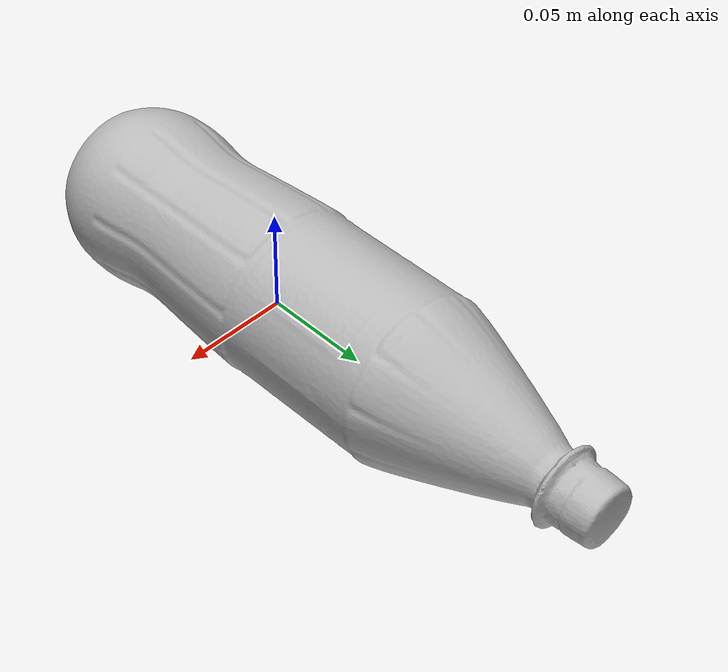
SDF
<?xml version='1.0'?>
<sdf version="1.4">
  <model name="CokePlasticLarge">
    <static>false</static>
    <link name="link">
      <inertial>
        <pose>-0.00314920988236481 0.011856275411037936 0.007875166721003392 1.5606779434718654 0.23532143997916574 3.1392752121110687</pose>
        <mass>0.1242627082214215</mass>
        <inertia>
          <ixx>0.0007163058634797565</ixx>
          <ixy>2.5128887917730382e-20</ixy>
          <ixz>-1.2755904065864066e-20</ixz>
          <iyy>0.0007161846187254631</iyy>
          <iyz>6.898068477979735e-20</iyz>
          <izz>9.298445566430796e-05</izz>
        </inertia>
      </inertial>
      <collision name="collision">
        <geometry>
          <mesh>
            <!-- Use a downsampled mesh for collisions -->
            <uri>model:///CokePlasticLarge/CokePlasticLarge_250_collision.obj</uri>
	        </mesh>
        </geometry>
        <surface>
      </surface>
      </collision>
      <visual name="visual">
        <geometry>
          <mesh>
            <uri>model:///CokePlasticLarge/CokePlasticLarge_25k_tex.obj</uri>
	        </mesh>
        </geometry>
        <material>
          <script>
            <uri>model:///CokePlasticLarge/CokePlasticLarge.material</uri>
            <name>CokePlasticLarge</name>
          </script>
        </material>
      </visual>
    </link>
  </model>
</sdf>
